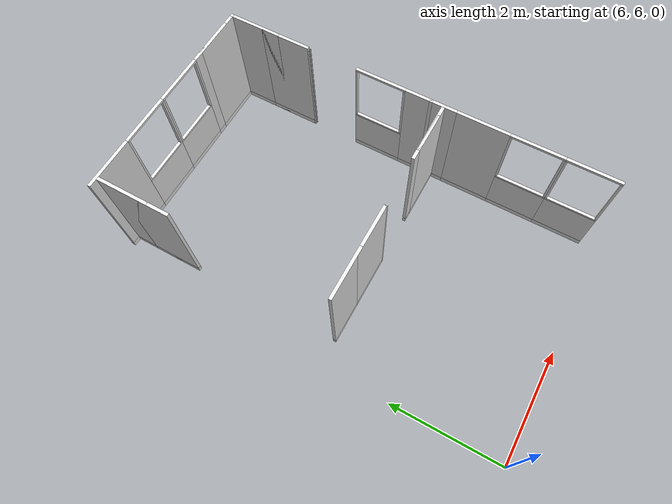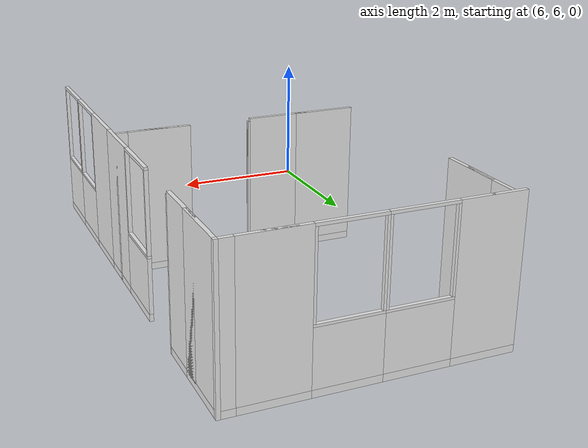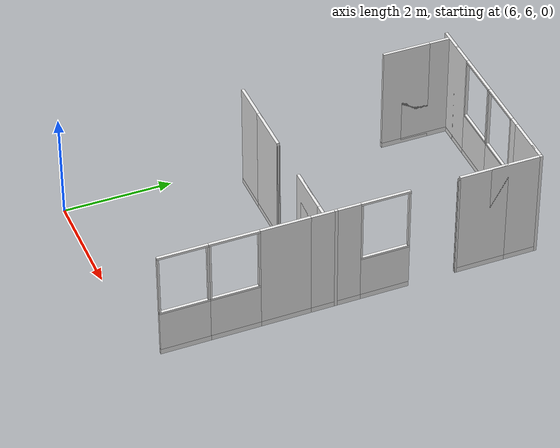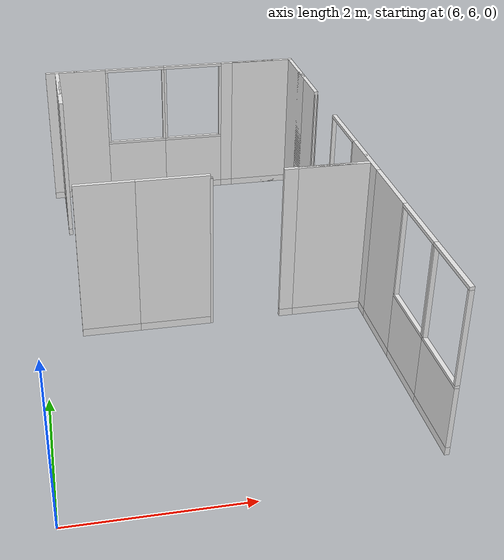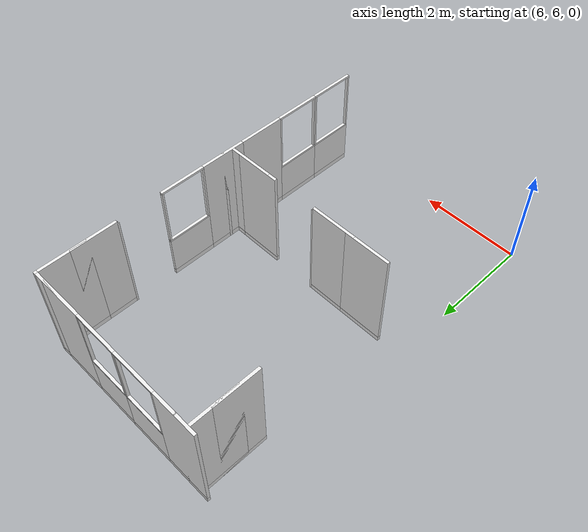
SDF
<sdf version="1.4">
 <world name="apartment">
  <model name="wall_x13y08">
   <link name="link">
    <inertial>
     <mass>50</mass>
     <inertia><ixx>1</ixx><ixy>0</ixy><ixz>0</ixz><iyy>1</iyy><iyz>0</iyz><izz>1</izz></inertia>
    </inertial>
    <visual name="bottom_frame">
     <pose>0 0 0.05 0 -0 0</pose>
     <geometry><box><size>0.055 0.9 0.1</size></box></geometry>
     <material>
      <script><uri>model://base_materials/color/scripts</uri><name>hsr_color/white</name></script>
     </material>
    </visual>
    <collision name="collision_bottom_frame">
     <pose>0 0 0.05 0 -0 0</pose>
     <geometry><box><size>0.055 0.9 0.1</size></box></geometry>
    </collision>
    <visual name="wall">
     <pose>0 0 0.4875 0 -0 0</pose>
     <geometry><box><size>0.055 0.9 0.775</size></box></geometry>
     <material>
      <script>
       <uri>model://base_materials/wall/scripts</uri>
       <uri>model://base_materials/wall/textures</uri>
       <name>wall/white_noise</name>
      </script>
     </material>
    </visual>
    <collision name="collision_wall">
     <pose>0 0 0.4875 0 -0 0</pose>
     <geometry><box><size>0.055 0.9 0.775</size></box></geometry>
    </collision>
    <visual name="center_frame">
     <pose>0 0 0.8925 0 -0 0</pose>
     <geometry><box><size>0.055 0.9 0.035</size></box></geometry>
     <material>
      <script><uri>model://base_materials/color/scripts</uri><name>hsr_color/white</name></script>
     </material>
    </visual>
    <collision name="collision_center_frame">
     <pose>0 0 0.8925 0 -0 0</pose>
     <geometry><box><size>0.055 0.9 0.035</size></box></geometry>
    </collision>
    <visual name="right_frame">
     <pose>0 0.4325 1.48 0 -0 0</pose>
     <geometry><box><size>0.055 0.035 1.14</size></box></geometry>
     <material>
      <script><uri>model://base_materials/color/scripts</uri><name>hsr_color/white</name></script>
     </material>
    </visual>
    <collision name="collision_right_frame">
     <pose>0 0.4325 1.48 0 -0 0</pose>
     <geometry><box><size>0.055 0.035 1.14</size></box></geometry>
    </collision>
    <visual name="left_frame">
     <pose>0 -0.4325 1.48 0 -0 0</pose>
     <geometry><box><size>0.055 0.035 1.14</size></box></geometry>
     <material>
      <script><uri>model://base_materials/color/scripts</uri><name>hsr_color/white</name></script>
     </material>
    </visual>
    <collision name="collision_left_frame">
     <pose>0 -0.4325 1.48 0 -0 0</pose>
     <geometry><box><size>0.055 0.035 1.14</size></box></geometry>
    </collision>
    <visual name="top_frame">
     <pose>0 0 2.07 0 -0 0</pose>
     <geometry><box><size>0.055 0.9 0.04</size></box></geometry>
     <material>
      <script><uri>model://base_materials/color/scripts</uri><name>hsr_color/white</name></script>
     </material>
    </visual>
    <collision name="collision_top_frame">
     <pose>0 0 2.07 0 -0 0</pose>
     <geometry><box><size>0.055 0.9 0.04</size></box></geometry>
    </collision>
    <velocity_decay><linear>0</linear><angular>0</angular></velocity_decay>
   </link>
   <static>1</static>
   <pose>10.1025 6.75 0 0 -0 0</pose>
  </model>
  <model name="wall_x13y09">
   <link name="link">
    <inertial>
     <mass>50</mass>
     <inertia><ixx>1</ixx><ixy>0</ixy><ixz>0</ixz><iyy>1</iyy><iyz>0</iyz><izz>1</izz></inertia>
    </inertial>
    <visual name="bottom_frame">
     <pose>0 0 0.05 0 -0 0</pose>
     <geometry><box><size>0.055 0.9 0.1</size></box></geometry>
     <material>
      <script><uri>model://base_materials/color/scripts</uri><name>hsr_color/white</name></script>
     </material>
    </visual>
    <collision name="collision_bottom_frame">
     <pose>0 0 0.05 0 -0 0</pose>
     <geometry><box><size>0.055 0.9 0.1</size></box></geometry>
    </collision>
    <visual name="wall">
     <pose>0 0 0.4875 0 -0 0</pose>
     <geometry><box><size>0.055 0.9 0.775</size></box></geometry>
     <material>
      <script>
       <uri>model://base_materials/wall/scripts</uri>
       <uri>model://base_materials/wall/textures</uri>
       <name>wall/white_noise</name>
      </script>
     </material>
    </visual>
    <collision name="collision_wall">
     <pose>0 0 0.4875 0 -0 0</pose>
     <geometry><box><size>0.055 0.9 0.775</size></box></geometry>
    </collision>
    <visual name="center_frame">
     <pose>0 0 0.8925 0 -0 0</pose>
     <geometry><box><size>0.055 0.9 0.035</size></box></geometry>
     <material>
      <script><uri>model://base_materials/color/scripts</uri><name>hsr_color/white</name></script>
     </material>
    </visual>
    <collision name="collision_center_frame">
     <pose>0 0 0.8925 0 -0 0</pose>
     <geometry><box><size>0.055 0.9 0.035</size></box></geometry>
    </collision>
    <visual name="right_frame">
     <pose>0 0.4325 1.48 0 -0 0</pose>
     <geometry><box><size>0.055 0.035 1.14</size></box></geometry>
     <material>
      <script><uri>model://base_materials/color/scripts</uri><name>hsr_color/white</name></script>
     </material>
    </visual>
    <collision name="collision_right_frame">
     <pose>0 0.4325 1.48 0 -0 0</pose>
     <geometry><box><size>0.055 0.035 1.14</size></box></geometry>
    </collision>
    <visual name="left_frame">
     <pose>0 -0.4325 1.48 0 -0 0</pose>
     <geometry><box><size>0.055 0.035 1.14</size></box></geometry>
     <material>
      <script><uri>model://base_materials/color/scripts</uri><name>hsr_color/white</name></script>
     </material>
    </visual>
    <collision name="collision_left_frame">
     <pose>0 -0.4325 1.48 0 -0 0</pose>
     <geometry><box><size>0.055 0.035 1.14</size></box></geometry>
    </collision>
    <visual name="top_frame">
     <pose>0 0 2.07 0 -0 0</pose>
     <geometry><box><size>0.055 0.9 0.04</size></box></geometry>
     <material>
      <script><uri>model://base_materials/color/scripts</uri><name>hsr_color/white</name></script>
     </material>
    </visual>
    <collision name="collision_top_frame">
     <pose>0 0 2.07 0 -0 0</pose>
     <geometry><box><size>0.055 0.9 0.04</size></box></geometry>
    </collision>
    <velocity_decay><linear>0</linear><angular>0</angular></velocity_decay>
   </link>
   <static>1</static>
   <pose>10.1025 7.65 0 0 -0 0</pose>
  </model>
  <model name="wall_x13y10">
   <link name="link">
    <inertial>
     <mass>50</mass>
     <inertia><ixx>1</ixx><ixy>0</ixy><ixz>0</ixz><iyy>1</iyy><iyz>0</iyz><izz>1</izz></inertia>
    </inertial>
    <visual name="bottom_frame">
     <pose>0 0 0.05 0 -0 0</pose>
     <geometry><box><size>0.055 0.9 0.1</size></box></geometry>
     <material>
      <script><uri>model://base_materials/color/scripts</uri><name>hsr_color/white</name></script>
     </material>
    </visual>
    <collision name="collision_bottom_frame">
     <pose>0 0 0.05 0 -0 0</pose>
     <geometry><box><size>0.055 0.9 0.1</size></box></geometry>
    </collision>
    <visual name="wall">
     <pose>0 0 1.095 0 -0 0</pose>
     <geometry><box><size>0.055 0.9 1.99</size></box></geometry>
     <material>
      <script>
       <uri>model://base_materials/wall/scripts</uri>
       <uri>model://base_materials/wall/textures</uri>
       <name>wall/white_noise</name>
      </script>
     </material>
    </visual>
    <collision name="collision_wall">
     <pose>0 0 1.095 0 -0 0</pose>
     <geometry><box><size>0.055 0.9 1.99</size></box></geometry>
    </collision>
    <velocity_decay><linear>0</linear><angular>0</angular></velocity_decay>
   </link>
   <static>1</static>
   <pose>10.1025 8.55 0 0 -0 0</pose>
  </model>
  <model name="wall_x13y11">
   <link name="link">
    <inertial>
     <mass>50</mass>
     <inertia><ixx>1</ixx><ixy>0</ixy><ixz>0</ixz><iyy>1</iyy><iyz>0</iyz><izz>1</izz></inertia>
    </inertial>
    <visual name="bottom_frame">
     <pose>0 0 0.05 0 -0 0</pose>
     <geometry><box><size>0.055 0.9 0.1</size></box></geometry>
     <material>
      <script><uri>model://base_materials/color/scripts</uri><name>hsr_color/white</name></script>
     </material>
    </visual>
    <collision name="collision_bottom_frame">
     <pose>0 0 0.05 0 -0 0</pose>
     <geometry><box><size>0.055 0.9 0.1</size></box></geometry>
    </collision>
    <visual name="wall">
     <pose>0 0 1.095 0 -0 0</pose>
     <geometry><box><size>0.055 0.9 1.99</size></box></geometry>
     <material>
      <script>
       <uri>model://base_materials/wall/scripts</uri>
       <uri>model://base_materials/wall/textures</uri>
       <name>wall/white_noise</name>
      </script>
     </material>
    </visual>
    <collision name="collision_wall">
     <pose>0 0 1.095 0 -0 0</pose>
     <geometry><box><size>0.055 0.9 1.99</size></box></geometry>
    </collision>
    <velocity_decay><linear>0</linear><angular>0</angular></velocity_decay>
   </link>
   <static>1</static>
   <pose>10.1025 9.45 0 0 -0 0</pose>
  </model>
  <model name="wall_x13y12">
   <link name="link">
    <inertial>
     <mass>50</mass>
     <inertia><ixx>1</ixx><ixy>0</ixy><ixz>0</ixz><iyy>1</iyy><iyz>0</iyz><izz>1</izz></inertia>
    </inertial>
    <visual name="bottom_frame">
     <pose>0 0 0.05 0 -0 0</pose>
     <geometry><box><size>0.055 0.9 0.1</size></box></geometry>
     <material>
      <script><uri>model://base_materials/color/scripts</uri><name>hsr_color/white</name></script>
     </material>
    </visual>
    <collision name="collision_bottom_frame">
     <pose>0 0 0.05 0 -0 0</pose>
     <geometry><box><size>0.055 0.9 0.1</size></box></geometry>
    </collision>
    <visual name="wall">
     <pose>0 0 0.4875 0 -0 0</pose>
     <geometry><box><size>0.055 0.9 0.775</size></box></geometry>
     <material>
      <script>
       <uri>model://base_materials/wall/scripts</uri>
       <uri>model://base_materials/wall/textures</uri>
       <name>wall/white_noise</name>
      </script>
     </material>
    </visual>
    <collision name="collision_wall">
     <pose>0 0 0.4875 0 -0 0</pose>
     <geometry><box><size>0.055 0.9 0.775</size></box></geometry>
    </collision>
    <visual name="center_frame">
     <pose>0 0 0.8925 0 -0 0</pose>
     <geometry><box><size>0.055 0.9 0.035</size></box></geometry>
     <material>
      <script><uri>model://base_materials/color/scripts</uri><name>hsr_color/white</name></script>
     </material>
    </visual>
    <collision name="collision_center_frame">
     <pose>0 0 0.8925 0 -0 0</pose>
     <geometry><box><size>0.055 0.9 0.035</size></box></geometry>
    </collision>
    <visual name="right_frame">
     <pose>0 0.4325 1.48 0 -0 0</pose>
     <geometry><box><size>0.055 0.035 1.14</size></box></geometry>
     <material>
      <script><uri>model://base_materials/color/scripts</uri><name>hsr_color/white</name></script>
     </material>
    </visual>
    <collision name="collision_right_frame">
     <pose>0 0.4325 1.48 0 -0 0</pose>
     <geometry><box><size>0.055 0.035 1.14</size></box></geometry>
    </collision>
    <visual name="left_frame">
     <pose>0 -0.4325 1.48 0 -0 0</pose>
     <geometry><box><size>0.055 0.035 1.14</size></box></geometry>
     <material>
      <script><uri>model://base_materials/color/scripts</uri><name>hsr_color/white</name></script>
     </material>
    </visual>
    <collision name="collision_left_frame">
     <pose>0 -0.4325 1.48 0 -0 0</pose>
     <geometry><box><size>0.055 0.035 1.14</size></box></geometry>
    </collision>
    <visual name="top_frame">
     <pose>0 0 2.07 0 -0 0</pose>
     <geometry><box><size>0.055 0.9 0.04</size></box></geometry>
     <material>
      <script><uri>model://base_materials/color/scripts</uri><name>hsr_color/white</name></script>
     </material>
    </visual>
    <collision name="collision_top_frame">
     <pose>0 0 2.07 0 -0 0</pose>
     <geometry><box><size>0.055 0.9 0.04</size></box></geometry>
    </collision>
    <velocity_decay><linear>0</linear><angular>0</angular></velocity_decay>
   </link>
   <static>1</static>
   <pose>10.1025 10.35 0 0 -0 0</pose>
  </model>
  <model name="door_stopper_x13y13">
   <link name="door_frame">
    <visual name="stopper">
     <pose>0.0225 0.0175 1.025 0 -0 0</pose>
     <geometry><box><size>0.01 0.035 2.05</size></box></geometry>
     <material>
      <script><uri>model://base_materials/color/scripts</uri><name>hsr_color/white</name></script>
     </material>
    </visual>
    <collision name="collision_frame_1">
     <pose>0.0225 0.0175 1.025 0 -0 0</pose>
     <geometry><box><size>0.01 0.035 2.05</size></box></geometry>
    </collision>
    <visual name="frame_2">
     <pose>-0.0225 0.0175 1.025 0 -0 0</pose>
     <geometry><box><size>0.01 0.035 2.05</size></box></geometry>
     <material>
      <script><uri>model://base_materials/color/scripts</uri><name>hsr_color/white</name></script>
     </material>
    </visual>
    <collision name="collision_frame_2">
     <pose>-0.0225 0.0175 1.025 0 -0 0</pose>
     <geometry><box><size>0.01 0.035 2.05</size></box></geometry>
    </collision>
    <velocity_decay><linear>0</linear><angular>0</angular></velocity_decay>
   </link>
   <static>1</static>
   <pose>10.1025 11.67 0 0 -0 0</pose>
  </model>
  <model name="wall_x13y14">
   <link name="link">
    <inertial>
     <mass>50</mass>
     <inertia><ixx>1</ixx><ixy>0</ixy><ixz>0</ixz><iyy>1</iyy><iyz>0</iyz><izz>1</izz></inertia>
    </inertial>
    <visual name="bottom_frame">
     <pose>0 0 0.05 0 -0 0</pose>
     <geometry><box><size>0.055 0.9 0.1</size></box></geometry>
     <material>
      <script><uri>model://base_materials/color/scripts</uri><name>hsr_color/white</name></script>
     </material>
    </visual>
    <collision name="collision_bottom_frame">
     <pose>0 0 0.05 0 -0 0</pose>
     <geometry><box><size>0.055 0.9 0.1</size></box></geometry>
    </collision>
    <visual name="wall">
     <pose>0 0 1.095 0 -0 0</pose>
     <geometry><box><size>0.055 0.9 1.99</size></box></geometry>
     <material>
      <script>
       <uri>model://base_materials/wall/scripts</uri>
       <uri>model://base_materials/wall/textures</uri>
       <name>wall/white_noise</name>
      </script>
     </material>
    </visual>
    <collision name="collision_wall">
     <pose>0 0 1.095 0 -0 0</pose>
     <geometry><box><size>0.055 0.9 1.99</size></box></geometry>
    </collision>
    <velocity_decay><linear>0</linear><angular>0</angular></velocity_decay>
   </link>
   <static>1</static>
   <pose>10.1025 12.15 0 0 -0 0</pose>
  </model>
  <model name="wall_x13y15">
   <link name="link">
    <inertial>
     <mass>50</mass>
     <inertia><ixx>1</ixx><ixy>0</ixy><ixz>0</ixz><iyy>1</iyy><iyz>0</iyz><izz>1</izz></inertia>
    </inertial>
    <visual name="bottom_frame">
     <pose>0 0 0.05 0 -0 0</pose>
     <geometry><box><size>0.055 0.9 0.1</size></box></geometry>
     <material>
      <script><uri>model://base_materials/color/scripts</uri><name>hsr_color/white</name></script>
     </material>
    </visual>
    <collision name="collision_bottom_frame">
     <pose>0 0 0.05 0 -0 0</pose>
     <geometry><box><size>0.055 0.9 0.1</size></box></geometry>
    </collision>
    <visual name="wall">
     <pose>0 0 1.095 0 -0 0</pose>
     <geometry><box><size>0.055 0.9 1.99</size></box></geometry>
     <material>
      <script>
       <uri>model://base_materials/wall/scripts</uri>
       <uri>model://base_materials/wall/textures</uri>
       <name>wall/white_noise</name>
      </script>
     </material>
    </visual>
    <collision name="collision_wall">
     <pose>0 0 1.095 0 -0 0</pose>
     <geometry><box><size>0.055 0.9 1.99</size></box></geometry>
    </collision>
    <velocity_decay><linear>0</linear><angular>0</angular></velocity_decay>
   </link>
   <static>1</static>
   <pose>10.1025 12.73 0 0 -0 0</pose>
  </model>
  <model name="wall_x13y16">
   <link name="link">
    <inertial>
     <mass>50</mass>
     <inertia><ixx>1</ixx><ixy>0</ixy><ixz>0</ixz><iyy>1</iyy><iyz>0</iyz><izz>1</izz></inertia>
    </inertial>
    <visual name="_frame">
     <pose>0 0 1.045 0 -0 0</pose>
     <geometry><box><size>0.055 0.055 2.09</size></box></geometry>
     <material>
      <script><uri>model://base_materials/color/scripts</uri><name>hsr_color/white</name></script>
     </material>
    </visual>
    <collision name="collision_frame">
     <pose>0 0 1.045 0 -0 0</pose>
     <geometry><box><size>0.055 0.055 2.09</size></box></geometry>
    </collision>
    <velocity_decay><linear>0</linear><angular>0</angular></velocity_decay>
   </link>
   <static>1</static>
   <pose>10.1025 13.2075 0 0 -0 0</pose>
  </model>
  <model name="wall_x08y16">
   <link name="link">
    <inertial>
     <mass>50</mass>
     <inertia><ixx>1</ixx><ixy>0</ixy><ixz>0</ixz><iyy>1</iyy><iyz>0</iyz><izz>1</izz></inertia>
    </inertial>
    <visual name="bottom_frame">
     <pose>0 0 0.05 0 -0 0</pose>
     <geometry><box><size>0.055 0.9 0.1</size></box></geometry>
     <material>
      <script><uri>model://base_materials/color/scripts</uri><name>hsr_color/white</name></script>
     </material>
    </visual>
    <collision name="collision_bottom_frame">
     <pose>0 0 0.05 0 -0 0</pose>
     <geometry><box><size>0.055 0.9 0.1</size></box></geometry>
    </collision>
    <visual name="wall">
     <pose>0 0 1.095 0 -0 0</pose>
     <geometry><box><size>0.055 0.9 1.99</size></box></geometry>
     <material>
      <script>
       <uri>model://base_materials/wall/scripts</uri>
       <uri>model://base_materials/wall/textures</uri>
       <name>wall/white_noise</name>
      </script>
     </material>
    </visual>
    <collision name="collision_wall">
     <pose>0 0 1.095 0 -0 0</pose>
     <geometry><box><size>0.055 0.9 1.99</size></box></geometry>
    </collision>
    <velocity_decay><linear>0</linear><angular>0</angular></velocity_decay>
   </link>
   <static>1</static>
   <pose>6.75 13.2075 0 0 -0 1.5708</pose>
  </model>
  <model name="wall_x09y16">
   <link name="link">
    <inertial>
     <mass>50</mass>
     <inertia><ixx>1</ixx><ixy>0</ixy><ixz>0</ixz><iyy>1</iyy><iyz>0</iyz><izz>1</izz></inertia>
    </inertial>
    <visual name="bottom_frame">
     <pose>0 0 0.05 0 -0 0</pose>
     <geometry><box><size>0.055 0.9 0.1</size></box></geometry>
     <material>
      <script><uri>model://base_materials/color/scripts</uri><name>hsr_color/white</name></script>
     </material>
    </visual>
    <collision name="collision_bottom_frame">
     <pose>0 0 0.05 0 -0 0</pose>
     <geometry><box><size>0.055 0.9 0.1</size></box></geometry>
    </collision>
    <visual name="wall">
     <pose>0 0 0.4875 0 -0 0</pose>
     <geometry><box><size>0.055 0.9 0.775</size></box></geometry>
     <material>
      <script>
       <uri>model://base_materials/wall/scripts</uri>
       <uri>model://base_materials/wall/textures</uri>
       <name>wall/white_noise</name>
      </script>
     </material>
    </visual>
    <collision name="collision_wall">
     <pose>0 0 0.4875 0 -0 0</pose>
     <geometry><box><size>0.055 0.9 0.775</size></box></geometry>
    </collision>
    <visual name="center_frame">
     <pose>0 0 0.8925 0 -0 0</pose>
     <geometry><box><size>0.055 0.9 0.035</size></box></geometry>
     <material>
      <script><uri>model://base_materials/color/scripts</uri><name>hsr_color/white</name></script>
     </material>
    </visual>
    <collision name="collision_center_frame">
     <pose>0 0 0.8925 0 -0 0</pose>
     <geometry><box><size>0.055 0.9 0.035</size></box></geometry>
    </collision>
    <visual name="right_frame">
     <pose>0 0.4325 1.48 0 -0 0</pose>
     <geometry><box><size>0.055 0.035 1.14</size></box></geometry>
     <material>
      <script><uri>model://base_materials/color/scripts</uri><name>hsr_color/white</name></script>
     </material>
    </visual>
    <collision name="collision_right_frame">
     <pose>0 0.4325 1.48 0 -0 0</pose>
     <geometry><box><size>0.055 0.035 1.14</size></box></geometry>
    </collision>
    <visual name="left_frame">
     <pose>0 -0.4325 1.48 0 -0 0</pose>
     <geometry><box><size>0.055 0.035 1.14</size></box></geometry>
     <material>
      <script><uri>model://base_materials/color/scripts</uri><name>hsr_color/white</name></script>
     </material>
    </visual>
    <collision name="collision_left_frame">
     <pose>0 -0.4325 1.48 0 -0 0</pose>
     <geometry><box><size>0.055 0.035 1.14</size></box></geometry>
    </collision>
    <visual name="top_frame">
     <pose>0 0 2.07 0 -0 0</pose>
     <geometry><box><size>0.055 0.9 0.04</size></box></geometry>
     <material>
      <script><uri>model://base_materials/color/scripts</uri><name>hsr_color/white</name></script>
     </material>
    </visual>
    <collision name="collision_top_frame">
     <pose>0 0 2.07 0 -0 0</pose>
     <geometry><box><size>0.055 0.9 0.04</size></box></geometry>
    </collision>
    <velocity_decay><linear>0</linear><angular>0</angular></velocity_decay>
   </link>
   <static>1</static>
   <pose>7.65 13.2075 0 0 -0 1.5708</pose>
  </model>
  <model name="wall_x10y16">
   <link name="link">
    <inertial>
     <mass>50</mass>
     <inertia><ixx>1</ixx><ixy>0</ixy><ixz>0</ixz><iyy>1</iyy><iyz>0</iyz><izz>1</izz></inertia>
    </inertial>
    <visual name="bottom_frame">
     <pose>0 0 0.05 0 -0 0</pose>
     <geometry><box><size>0.055 0.9 0.1</size></box></geometry>
     <material>
      <script><uri>model://base_materials/color/scripts</uri><name>hsr_color/white</name></script>
     </material>
    </visual>
    <collision name="collision_bottom_frame">
     <pose>0 0 0.05 0 -0 0</pose>
     <geometry><box><size>0.055 0.9 0.1</size></box></geometry>
    </collision>
    <visual name="wall">
     <pose>0 0 0.4875 0 -0 0</pose>
     <geometry><box><size>0.055 0.9 0.775</size></box></geometry>
     <material>
      <script>
       <uri>model://base_materials/wall/scripts</uri>
       <uri>model://base_materials/wall/textures</uri>
       <name>wall/white_noise</name>
      </script>
     </material>
    </visual>
    <collision name="collision_wall">
     <pose>0 0 0.4875 0 -0 0</pose>
     <geometry><box><size>0.055 0.9 0.775</size></box></geometry>
    </collision>
    <visual name="center_frame">
     <pose>0 0 0.8925 0 -0 0</pose>
     <geometry><box><size>0.055 0.9 0.035</size></box></geometry>
     <material>
      <script><uri>model://base_materials/color/scripts</uri><name>hsr_color/white</name></script>
     </material>
    </visual>
    <collision name="collision_center_frame">
     <pose>0 0 0.8925 0 -0 0</pose>
     <geometry><box><size>0.055 0.9 0.035</size></box></geometry>
    </collision>
    <visual name="right_frame">
     <pose>0 0.4325 1.48 0 -0 0</pose>
     <geometry><box><size>0.055 0.035 1.14</size></box></geometry>
     <material>
      <script><uri>model://base_materials/color/scripts</uri><name>hsr_color/white</name></script>
     </material>
    </visual>
    <collision name="collision_right_frame">
     <pose>0 0.4325 1.48 0 -0 0</pose>
     <geometry><box><size>0.055 0.035 1.14</size></box></geometry>
    </collision>
    <visual name="left_frame">
     <pose>0 -0.4325 1.48 0 -0 0</pose>
     <geometry><box><size>0.055 0.035 1.14</size></box></geometry>
     <material>
      <script><uri>model://base_materials/color/scripts</uri><name>hsr_color/white</name></script>
     </material>
    </visual>
    <collision name="collision_left_frame">
     <pose>0 -0.4325 1.48 0 -0 0</pose>
     <geometry><box><size>0.055 0.035 1.14</size></box></geometry>
    </collision>
    <visual name="top_frame">
     <pose>0 0 2.07 0 -0 0</pose>
     <geometry><box><size>0.055 0.9 0.04</size></box></geometry>
     <material>
      <script><uri>model://base_materials/color/scripts</uri><name>hsr_color/white</name></script>
     </material>
    </visual>
    <collision name="collision_top_frame">
     <pose>0 0 2.07 0 -0 0</pose>
     <geometry><box><size>0.055 0.9 0.04</size></box></geometry>
    </collision>
    <velocity_decay><linear>0</linear><angular>0</angular></velocity_decay>
   </link>
   <static>1</static>
   <pose>8.55 13.2075 0 0 -0 1.5708</pose>
  </model>
  <model name="wall_x11y16">
   <link name="link">
    <inertial>
     <mass>50</mass>
     <inertia><ixx>1</ixx><ixy>0</ixy><ixz>0</ixz><iyy>1</iyy><iyz>0</iyz><izz>1</izz></inertia>
    </inertial>
    <visual name="bottom_frame">
     <pose>0 0 0.05 0 -0 0</pose>
     <geometry><box><size>0.055 0.9 0.1</size></box></geometry>
     <material>
      <script><uri>model://base_materials/color/scripts</uri><name>hsr_color/white</name></script>
     </material>
    </visual>
    <collision name="collision_bottom_frame">
     <pose>0 0 0.05 0 -0 0</pose>
     <geometry><box><size>0.055 0.9 0.1</size></box></geometry>
    </collision>
    <visual name="wall">
     <pose>0 0 1.095 0 -0 0</pose>
     <geometry><box><size>0.055 0.9 1.99</size></box></geometry>
     <material>
      <script>
       <uri>model://base_materials/wall/scripts</uri>
       <uri>model://base_materials/wall/textures</uri>
       <name>wall/white_noise</name>
      </script>
     </material>
    </visual>
    <collision name="collision_wall">
     <pose>0 0 1.095 0 -0 0</pose>
     <geometry><box><size>0.055 0.9 1.99</size></box></geometry>
    </collision>
    <velocity_decay><linear>0</linear><angular>0</angular></velocity_decay>
   </link>
   <static>1</static>
   <pose>9.45 13.2075 0 0 -0 1.5708</pose>
  </model>
  <model name="wall_x12y16">
   <link name="link">
    <inertial>
     <mass>50</mass>
     <inertia><ixx>1</ixx><ixy>0</ixy><ixz>0</ixz><iyy>1</iyy><iyz>0</iyz><izz>1</izz></inertia>
    </inertial>
    <visual name="bottom_frame">
     <pose>0 0 0.05 0 -0 0</pose>
     <geometry><box><size>0.055 0.9 0.1</size></box></geometry>
     <material>
      <script><uri>model://base_materials/color/scripts</uri><name>hsr_color/white</name></script>
     </material>
    </visual>
    <collision name="collision_bottom_frame">
     <pose>0 0 0.05 0 -0 0</pose>
     <geometry><box><size>0.055 0.9 0.1</size></box></geometry>
    </collision>
    <visual name="wall">
     <pose>0 0 1.095 0 -0 0</pose>
     <geometry><box><size>0.055 0.9 1.99</size></box></geometry>
     <material>
      <script>
       <uri>model://base_materials/wall/scripts</uri>
       <uri>model://base_materials/wall/textures</uri>
       <name>wall/white_noise</name>
      </script>
     </material>
    </visual>
    <collision name="collision_wall">
     <pose>0 0 1.095 0 -0 0</pose>
     <geometry><box><size>0.055 0.9 1.99</size></box></geometry>
    </collision>
    <velocity_decay><linear>0</linear><angular>0</angular></velocity_decay>
   </link>
   <static>1</static>
   <pose>9.625 13.2075 0 0 -0 1.5708</pose>
  </model>
  <model name="wall_x13y16">
   <link name="link">
    <inertial>
     <mass>50</mass>
     <inertia><ixx>1</ixx><ixy>0</ixy><ixz>0</ixz><iyy>1</iyy><iyz>0</iyz><izz>1</izz></inertia>
    </inertial>
    <visual name="_frame">
     <pose>0 0 1.045 0 -0 0</pose>
     <geometry><box><size>0.055 0.055 2.09</size></box></geometry>
     <material>
      <script><uri>model://base_materials/color/scripts</uri><name>hsr_color/white</name></script>
     </material>
    </visual>
    <collision name="collision_frame">
     <pose>0 0 1.045 0 -0 0</pose>
     <geometry><box><size>0.055 0.055 2.09</size></box></geometry>
    </collision>
    <velocity_decay><linear>0</linear><angular>0</angular></velocity_decay>
   </link>
   <static>1</static>
   <pose>10.1025 13.2075 0 0 -0 0</pose>
  </model>
  <model name="wall_x08y14">
   <link name="link">
    <inertial>
     <mass>50</mass>
     <inertia><ixx>1</ixx><ixy>0</ixy><ixz>0</ixz><iyy>1</iyy><iyz>0</iyz><izz>1</izz></inertia>
    </inertial>
    <visual name="bottom_frame">
     <pose>0 0 0.05 0 -0 0</pose>
     <geometry><box><size>0.055 0.9 0.1</size></box></geometry>
     <material>
      <script><uri>model://base_materials/color/scripts</uri><name>hsr_color/white</name></script>
     </material>
    </visual>
    <collision name="collision_bottom_frame">
     <pose>0 0 0.05 0 -0 0</pose>
     <geometry><box><size>0.055 0.9 0.1</size></box></geometry>
    </collision>
    <visual name="wall">
     <pose>0 0 1.095 0 -0 0</pose>
     <geometry><box><size>0.055 0.9 1.99</size></box></geometry>
     <material>
      <script>
       <uri>model://base_materials/wall/scripts</uri>
       <uri>model://base_materials/wall/textures</uri>
       <name>wall/white_noise</name>
      </script>
     </material>
    </visual>
    <collision name="collision_wall">
     <pose>0 0 1.095 0 -0 0</pose>
     <geometry><box><size>0.055 0.9 1.99</size></box></geometry>
    </collision>
    <velocity_decay><linear>0</linear><angular>0</angular></velocity_decay>
   </link>
   <static>1</static>
   <pose>6.47 12.35 0 0 -0 0</pose>
  </model>
  <model name="wall_x08y15">
   <link name="link">
    <inertial>
     <mass>50</mass>
     <inertia><ixx>1</ixx><ixy>0</ixy><ixz>0</ixz><iyy>1</iyy><iyz>0</iyz><izz>1</izz></inertia>
    </inertial>
    <visual name="bottom_frame">
     <pose>0 0 0.05 0 -0 0</pose>
     <geometry><box><size>0.055 0.9 0.1</size></box></geometry>
     <material>
      <script><uri>model://base_materials/color/scripts</uri><name>hsr_color/white</name></script>
     </material>
    </visual>
    <collision name="collision_bottom_frame">
     <pose>0 0 0.05 0 -0 0</pose>
     <geometry><box><size>0.055 0.9 0.1</size></box></geometry>
    </collision>
    <visual name="wall">
     <pose>0 0 1.095 0 -0 0</pose>
     <geometry><box><size>0.055 0.9 1.99</size></box></geometry>
     <material>
      <script>
       <uri>model://base_materials/wall/scripts</uri>
       <uri>model://base_materials/wall/textures</uri>
       <name>wall/white_noise</name>
      </script>
     </material>
    </visual>
    <collision name="collision_wall">
     <pose>0 0 1.095 0 -0 0</pose>
     <geometry><box><size>0.055 0.9 1.99</size></box></geometry>
    </collision>
    <velocity_decay><linear>0</linear><angular>0</angular></velocity_decay>
   </link>
   <static>1</static>
   <pose>6.47 12.73 0 0 -0 0</pose>
  </model>
  <model name="wall_x08y16">
   <link name="link">
    <inertial>
     <mass>50</mass>
     <inertia><ixx>1</ixx><ixy>0</ixy><ixz>0</ixz><iyy>1</iyy><iyz>0</iyz><izz>1</izz></inertia>
    </inertial>
    <visual name="_frame">
     <pose>0 0 1.045 0 -0 0</pose>
     <geometry><box><size>0.055 0.055 2.09</size></box></geometry>
     <material>
      <script><uri>model://base_materials/color/scripts</uri><name>hsr_color/white</name></script>
     </material>
    </visual>
    <collision name="collision_frame">
     <pose>0 0 1.045 0 -0 0</pose>
     <geometry><box><size>0.055 0.055 2.09</size></box></geometry>
    </collision>
    <velocity_decay><linear>0</linear><angular>0</angular></velocity_decay>
   </link>
   <static>1</static>
   <pose>6.75 13.2075 0 0 -0 1.5708</pose>
  </model>
  <model name="wall_x08y11b">
   <link name="link">
    <inertial>
     <mass>50</mass>
     <inertia><ixx>1</ixx><ixy>0</ixy><ixz>0</ixz><iyy>1</iyy><iyz>0</iyz><izz>1</izz></inertia>
    </inertial>
    <visual name="bottom_frame">
     <pose>0 0 0.05 0 -0 0</pose>
     <geometry><box><size>0.055 0.9 0.1</size></box></geometry>
     <material>
      <script><uri>model://base_materials/color/scripts</uri><name>hsr_color/white</name></script>
     </material>
    </visual>
    <collision name="collision_bottom_frame">
     <pose>0 0 0.05 0 -0 0</pose>
     <geometry><box><size>0.055 0.9 0.1</size></box></geometry>
    </collision>
    <visual name="wall">
     <pose>0 0 1.095 0 -0 0</pose>
     <geometry><box><size>0.055 0.9 1.99</size></box></geometry>
     <material>
      <script>
       <uri>model://base_materials/wall/scripts</uri>
       <uri>model://base_materials/wall/textures</uri>
       <name>wall/white_noise</name>
      </script>
     </material>
    </visual>
    <collision name="collision_wall">
     <pose>0 0 1.095 0 -0 0</pose>
     <geometry><box><size>0.055 0.9 1.99</size></box></geometry>
    </collision>
    <velocity_decay><linear>0</linear><angular>0</angular></velocity_decay>
   </link>
   <static>1</static>
   <pose>6.918 9.23 0 0 -0 1.5708</pose>
  </model>
  <model name="wall_x09y11">
   <link name="link">
    <inertial>
     <mass>50</mass>
     <inertia><ixx>1</ixx><ixy>0</ixy><ixz>0</ixz><iyy>1</iyy><iyz>0</iyz><izz>1</izz></inertia>
    </inertial>
    <visual name="bottom_frame">
     <pose>0 0 0.05 0 -0 0</pose>
     <geometry><box><size>0.055 0.9 0.1</size></box></geometry>
     <material>
      <script><uri>model://base_materials/color/scripts</uri><name>hsr_color/white</name></script>
     </material>
    </visual>
    <collision name="collision_bottom_frame">
     <pose>0 0 0.05 0 -0 0</pose>
     <geometry><box><size>0.055 0.9 0.1</size></box></geometry>
    </collision>
    <visual name="wall">
     <pose>0 0 1.095 0 -0 0</pose>
     <geometry><box><size>0.055 0.9 1.99</size></box></geometry>
     <material>
      <script>
       <uri>model://base_materials/wall/scripts</uri>
       <uri>model://base_materials/wall/textures</uri>
       <name>wall/white_noise</name>
      </script>
     </material>
    </visual>
    <collision name="collision_wall">
     <pose>0 0 1.095 0 -0 0</pose>
     <geometry><box><size>0.055 0.9 1.99</size></box></geometry>
    </collision>
    <velocity_decay><linear>0</linear><angular>0</angular></velocity_decay>
   </link>
   <static>1</static>
   <pose>7.65 9.23 0 0 -0 1.5708</pose>
  </model>
  <model name="door_stopper_x10y11">
   <link name="door_frame">
    <visual name="stopper">
     <pose>0.0225 0.0175 1.025 0 -0 0</pose>
     <geometry><box><size>0.01 0.035 2.05</size></box></geometry>
     <material>
      <script><uri>model://base_materials/color/scripts</uri><name>hsr_color/white</name></script>
     </material>
    </visual>
    <collision name="collision_frame_1">
     <pose>0.0225 0.0175 1.025 0 -0 0</pose>
     <geometry><box><size>0.01 0.035 2.05</size></box></geometry>
    </collision>
    <visual name="frame_2">
     <pose>-0.0225 0.0175 1.025 0 -0 0</pose>
     <geometry><box><size>0.01 0.035 2.05</size></box></geometry>
     <material>
      <script><uri>model://base_materials/color/scripts</uri><name>hsr_color/white</name></script>
     </material>
    </visual>
    <collision name="collision_frame_2">
     <pose>-0.0225 0.0175 1.025 0 -0 0</pose>
     <geometry><box><size>0.01 0.035 2.05</size></box></geometry>
    </collision>
    <velocity_decay><linear>0</linear><angular>0</angular></velocity_decay>
   </link>
   <static>1</static>
   <pose>8.13 9.23 0 0 -0 1.5708</pose>
  </model>
  <model name="wall_x11y11">
   <link name="link">
    <inertial>
     <mass>50</mass>
     <inertia><ixx>1</ixx><ixy>0</ixy><ixz>0</ixz><iyy>1</iyy><iyz>0</iyz><izz>1</izz></inertia>
    </inertial>
    <visual name="bottom_frame">
     <pose>0 0 0.05 0 -0 0</pose>
     <geometry><box><size>0.055 0.9 0.1</size></box></geometry>
     <material>
      <script><uri>model://base_materials/color/scripts</uri><name>hsr_color/white</name></script>
     </material>
    </visual>
    <collision name="collision_bottom_frame">
     <pose>0 0 0.05 0 -0 0</pose>
     <geometry><box><size>0.055 0.9 0.1</size></box></geometry>
    </collision>
    <visual name="wall">
     <pose>0 0 1.095 0 -0 0</pose>
     <geometry><box><size>0.055 0.9 1.99</size></box></geometry>
     <material>
      <script>
       <uri>model://base_materials/wall/scripts</uri>
       <uri>model://base_materials/wall/textures</uri>
       <name>wall/white_noise</name>
      </script>
     </material>
    </visual>
    <collision name="collision_wall">
     <pose>0 0 1.095 0 -0 0</pose>
     <geometry><box><size>0.055 0.9 1.99</size></box></geometry>
    </collision>
    <velocity_decay><linear>0</linear><angular>0</angular></velocity_decay>
   </link>
   <static>1</static>
   <pose>9.45 9.23 0 0 -0 1.5708</pose>
  </model>
  <model name="wall_x12y11">
   <link name="link">
    <inertial>
     <mass>50</mass>
     <inertia><ixx>1</ixx><ixy>0</ixy><ixz>0</ixz><iyy>1</iyy><iyz>0</iyz><izz>1</izz></inertia>
    </inertial>
    <visual name="bottom_frame">
     <pose>0 0 0.05 0 -0 0</pose>
     <geometry><box><size>0.055 0.9 0.1</size></box></geometry>
     <material>
      <script><uri>model://base_materials/color/scripts</uri><name>hsr_color/white</name></script>
     </material>
    </visual>
    <collision name="collision_bottom_frame">
     <pose>0 0 0.05 0 -0 0</pose>
     <geometry><box><size>0.055 0.9 0.1</size></box></geometry>
    </collision>
    <visual name="wall">
     <pose>0 0 1.095 0 -0 0</pose>
     <geometry><box><size>0.055 0.9 1.99</size></box></geometry>
     <material>
      <script>
       <uri>model://base_materials/wall/scripts</uri>
       <uri>model://base_materials/wall/textures</uri>
       <name>wall/white_noise</name>
      </script>
     </material>
    </visual>
    <collision name="collision_wall">
     <pose>0 0 1.095 0 -0 0</pose>
     <geometry><box><size>0.055 0.9 1.99</size></box></geometry>
    </collision>
    <velocity_decay><linear>0</linear><angular>0</angular></velocity_decay>
   </link>
   <static>1</static>
   <pose>9.625 9.23 0 0 -0 1.5708</pose>
  </model>
  <model name="wall_x13y11">
   <link name="link">
    <inertial>
     <mass>50</mass>
     <inertia><ixx>1</ixx><ixy>0</ixy><ixz>0</ixz><iyy>1</iyy><iyz>0</iyz><izz>1</izz></inertia>
    </inertial>
    <visual name="_frame">
     <pose>0 0 1.045 0 -0 0</pose>
     <geometry><box><size>0.055 0.055 2.09</size></box></geometry>
     <material>
      <script><uri>model://base_materials/color/scripts</uri><name>hsr_color/white</name></script>
     </material>
    </visual>
    <collision name="collision_frame">
     <pose>0 0 1.045 0 -0 0</pose>
     <geometry><box><size>0.055 0.055 2.09</size></box></geometry>
    </collision>
    <velocity_decay><linear>0</linear><angular>0</angular></velocity_decay>
   </link>
   <static>1</static>
   <pose>10.1025 9.45 0 0 -0 0</pose>
  </model>
 </world>
</sdf>
